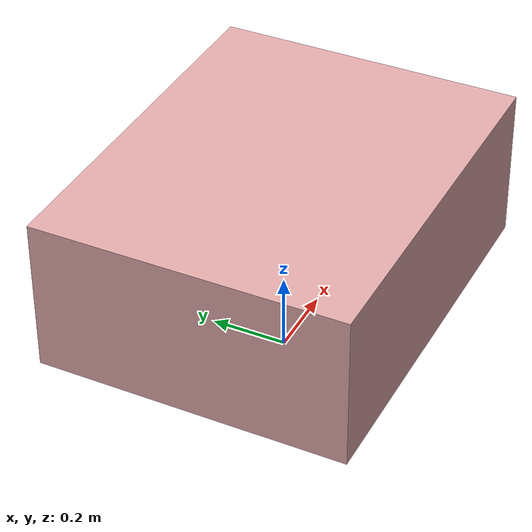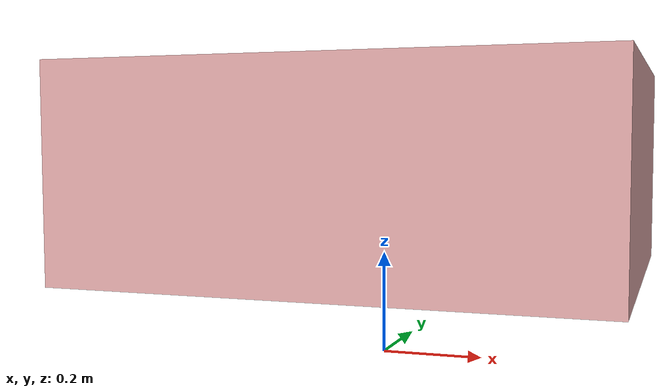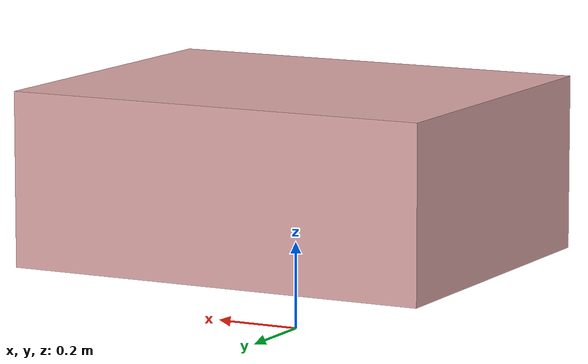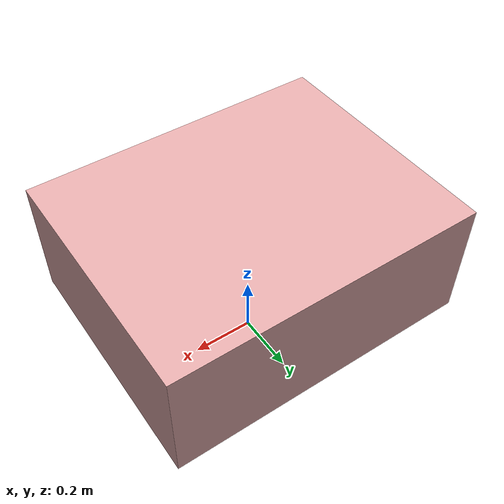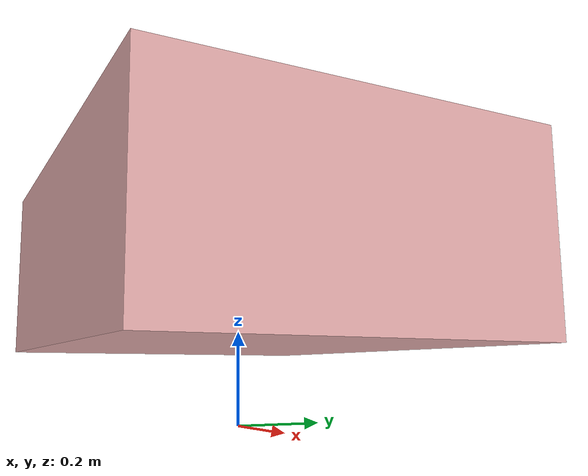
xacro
<?xml version="1.0"?>
<robot name="rover"
  xmlns:xacro="http://ros.org/wiki/xacro">

  <xacro:include filename="$(find bringup)/urdf/mech/base.urdf.xacro" />
  <xacro:include filename="$(find bringup)/urdf/sensors/imu.urdf.xacro" />
  <xacro:include filename="$(find bringup)/urdf/sensors/gps.urdf.xacro" />
  <xacro:include filename="$(find bringup)/urdf/sensors/d435.urdf.xacro" />
  <xacro:include filename="$(find bringup)/urdf/rover_properties.urdf.xacro" />

  <xacro:base length="${base_length}" width="${base_width}" height="${base_height}" base_height= "${base_top}" />

  <xacro:imu x_pos="${imu_pos_x}" y_pos="${imu_pos_y}" z_pos="${imu_pos_z}" yaw_pos="${imu_pos_yaw}"/>

  <xacro:d435 x_pos="${d435_pos_x}" y_pos="${d435_pos_y}" z_pos="${d435_pos_z}" />

  <xacro:gps x_pos="${gps_pos_x}" y_pos="${gps_pos_y}" z_pos="${gps_pos_z}" />

</robot>

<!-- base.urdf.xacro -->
<robot xmlns:xacro="http://ros.org/wiki/xacro">
  <xacro:macro name="base" params="length width height base_height">
    <link name="base_footprint"/>

    <link name="base_link">
      <visual>
        <origin xyz="0 0 ${-height/2}" rpy="0 0 0"/>
        <geometry>
          <box size="${length} ${width} ${height}"/>
        </geometry>
        <material name="yellow">
          <color rgba="0.8784 0.6627 0.6627 1.0"/>
        </material>
      </visual>
    </link>

    <joint name="base_to_footprint" type="fixed">
      <parent link="base_footprint"/>
      <child link="base_link"/>
      <origin xyz="0 0 ${base_height}" rpy="0 0 0"/>
    </joint>
  </xacro:macro>
</robot>

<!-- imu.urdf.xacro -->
<robot xmlns:xacro="http://ros.org/wiki/xacro">
  <xacro:macro name="imu" params="x_pos y_pos z_pos yaw_pos">
    <link name="imu_link"/>

    <joint name="imu_to_base_link" type="fixed">
      <parent link="base_link"/>
      <child link="imu_link"/>
      <origin xyz="${x_pos} ${y_pos} ${z_pos}" rpy="0 0 ${yaw_pos}"/>
    </joint>
  </xacro:macro>
</robot>

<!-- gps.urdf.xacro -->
<robot xmlns:xacro="http://ros.org/wiki/xacro">
  <xacro:macro name="gps" params="x_pos y_pos z_pos">
    <link name="gps_link"/>

    <joint name="gps_to_base_link" type="fixed">
      <parent link="base_link"/>
      <child link="gps_link"/>
      <origin xyz="${x_pos} ${y_pos} ${z_pos}" rpy="0 0 0"/>
    </joint>
  </xacro:macro>
</robot>

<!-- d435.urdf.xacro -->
<robot xmlns:xacro="http://ros.org/wiki/xacro">
  <xacro:macro name="d435" params="x_pos y_pos z_pos">
    <link name="d435_link"/>

    <joint name="d435_to_base_link" type="fixed">
      <parent link="base_link"/>
      <child link="d435_link"/>
      <origin xyz="${x_pos} ${y_pos} ${z_pos}" rpy="0 0 0"/>
    </joint>
  </xacro:macro>
</robot>

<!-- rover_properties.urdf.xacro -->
<robot xmlns:xacro="http://ros.org/wiki/xacro">
  <xacro:property name="base_length" value="1.0" />
  <xacro:property name="base_width" value="0.8" />
  <xacro:property name="base_height" value="0.4" />
  <xacro:property name="base_top" value="0.565" />

  <xacro:property name="imu_pos_x" value="-0.03" />
  <xacro:property name="imu_pos_y" value="0.245" />
  <xacro:property name="imu_pos_z" value="-0.12" />
  <xacro:property name="imu_pos_yaw" value="3.14" />

  <xacro:property name="d435_pos_x" value="-0.27" />
  <xacro:property name="d435_pos_y" value="0.0" />
  <xacro:property name="d435_pos_z" value="0.35" />

  <xacro:property name="gps_pos_x" value="-0.15" />
  <xacro:property name="gps_pos_y" value="0.0" />
  <xacro:property name="gps_pos_z" value="0.3" />

</robot>
